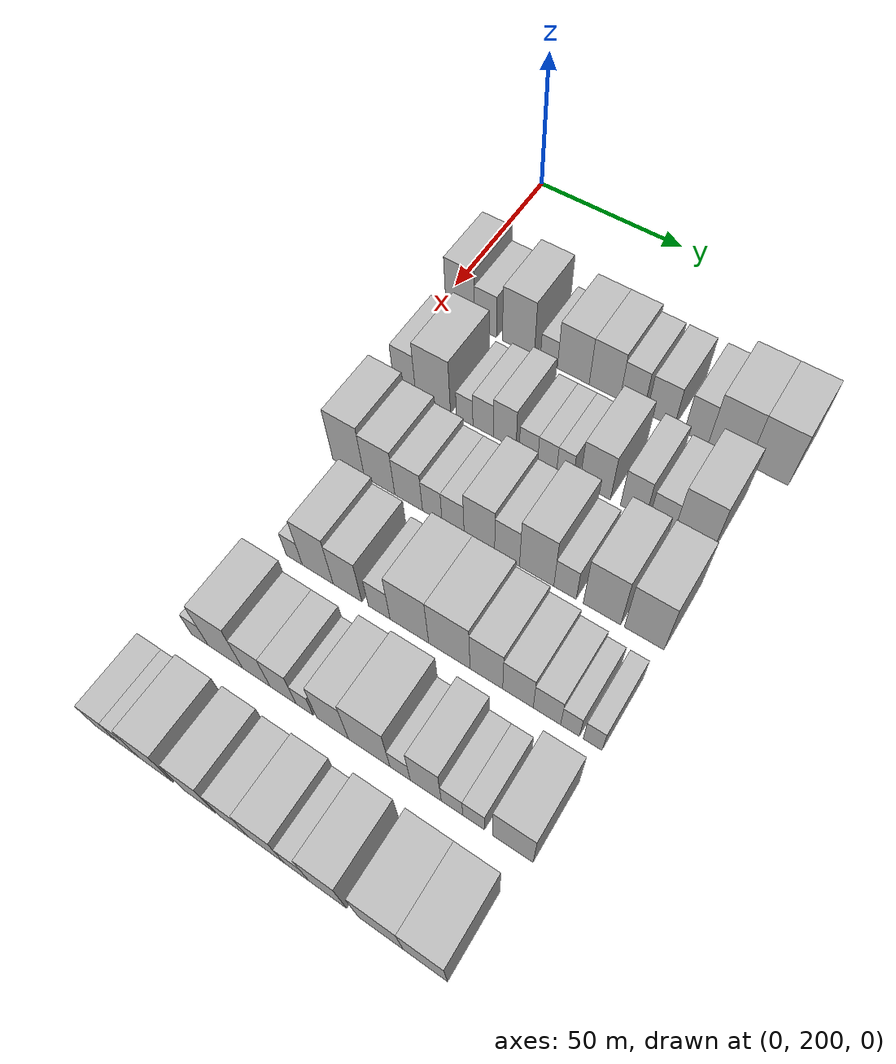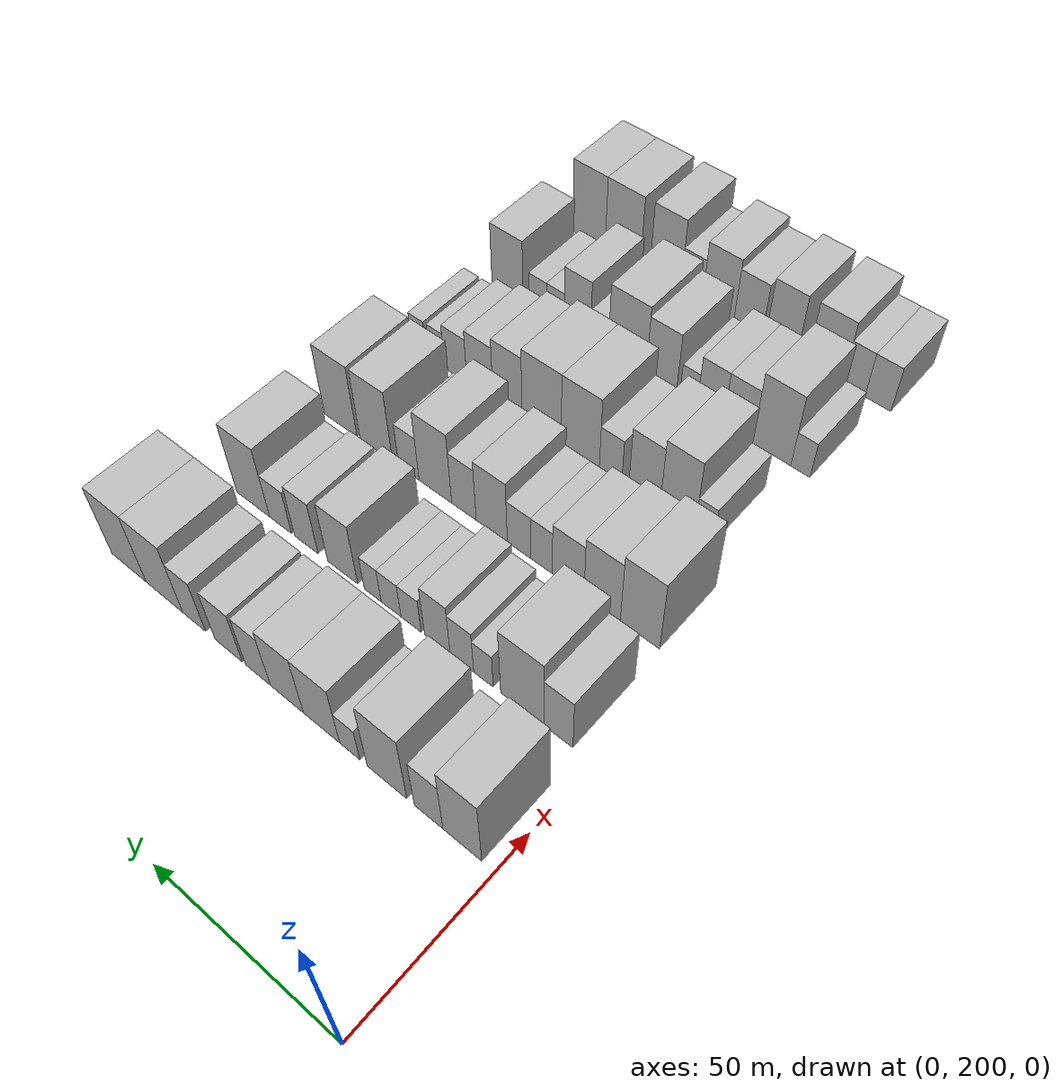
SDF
<sdf version="1.6">
 <world name="default">
  <model name="building_84">
   <static>1</static>
   <pose>50.0000 208.2229 0 0.000000 0.000000 0.000000</pose>
   <link name="link">
    <pose>0 0 12.00 0 0 0</pose>
    <collision name="collision"><geometry><box><size>20.0000 9.9118 24.0000</size></box></geometry></collision>
    <visual name="visual">
     <cast_shadows>0</cast_shadows>
     <geometry><box><size>20.0000 9.9118 24.0000</size></box></geometry>
     <material>
      <script>
       <uri>model://HANNAS_wall/materials/scripts</uri>
       <uri>model://HANNAS_wall/materials/textures</uri>
       <name>vrc/HANNAS_wall</name>
      </script>
     </material>
    </visual>
   </link>
  </model>
  <model name="building_85">
   <static>1</static>
   <pose>50.0000 216.9162 0 0.000000 0.000000 0.000000</pose>
   <link name="link">
    <pose>0 0 9.00 0 0 0</pose>
    <collision name="collision"><geometry><box><size>20.0000 7.4749 18.0000</size></box></geometry></collision>
    <visual name="visual">
     <cast_shadows>0</cast_shadows>
     <geometry><box><size>20.0000 7.4749 18.0000</size></box></geometry>
     <material>
      <script>
       <uri>model://HANNAS_wall/materials/scripts</uri>
       <uri>model://HANNAS_wall/materials/textures</uri>
       <name>vrc/HANNAS_wall</name>
      </script>
     </material>
    </visual>
   </link>
  </model>
  <model name="building_86">
   <static>1</static>
   <pose>50.0000 228.0209 0 0.000000 0.000000 0.000000</pose>
   <link name="link">
    <pose>0 0 12.00 0 0 0</pose>
    <collision name="collision"><geometry><box><size>20.0000 10.7344 24.0000</size></box></geometry></collision>
    <visual name="visual">
     <cast_shadows>0</cast_shadows>
     <geometry><box><size>20.0000 10.7344 24.0000</size></box></geometry>
     <material>
      <script>
       <uri>model://HANNAS_wall/materials/scripts</uri>
       <uri>model://HANNAS_wall/materials/textures</uri>
       <name>vrc/HANNAS_wall</name>
      </script>
     </material>
    </visual>
   </link>
  </model>
  <model name="building_87">
   <static>1</static>
   <pose>50.0000 238.1948 0 0.000000 0.000000 0.000000</pose>
   <link name="link">
    <pose>0 0 6.00 0 0 0</pose>
    <collision name="collision"><geometry><box><size>20.0000 5.6133 12.0000</size></box></geometry></collision>
    <visual name="visual">
     <cast_shadows>0</cast_shadows>
     <geometry><box><size>20.0000 5.6133 12.0000</size></box></geometry>
     <material>
      <script>
       <uri>model://HANNAS_wall/materials/scripts</uri>
       <uri>model://HANNAS_wall/materials/textures</uri>
       <name>vrc/HANNAS_wall</name>
      </script>
     </material>
    </visual>
   </link>
  </model>
  <model name="building_88">
   <static>1</static>
   <pose>50.0000 246.1663 0 0.000000 0.000000 0.000000</pose>
   <link name="link">
    <pose>0 0 10.50 0 0 0</pose>
    <collision name="collision"><geometry><box><size>20.0000 10.3297 21.0000</size></box></geometry></collision>
    <visual name="visual">
     <cast_shadows>0</cast_shadows>
     <geometry><box><size>20.0000 10.3297 21.0000</size></box></geometry>
     <material>
      <script>
       <uri>model://HANNAS_wall/materials/scripts</uri>
       <uri>model://HANNAS_wall/materials/textures</uri>
       <name>vrc/HANNAS_wall</name>
      </script>
     </material>
    </visual>
   </link>
  </model>
  <model name="building_89">
   <static>1</static>
   <pose>50.0000 256.2090 0 0.000000 0.000000 0.000000</pose>
   <link name="link">
    <pose>0 0 10.50 0 0 0</pose>
    <collision name="collision"><geometry><box><size>20.0000 9.7558 21.0000</size></box></geometry></collision>
    <visual name="visual">
     <cast_shadows>0</cast_shadows>
     <geometry><box><size>20.0000 9.7558 21.0000</size></box></geometry>
     <material>
      <script>
       <uri>model://HANNAS_wall/materials/scripts</uri>
       <uri>model://HANNAS_wall/materials/textures</uri>
       <name>vrc/HANNAS_wall</name>
      </script>
     </material>
    </visual>
   </link>
  </model>
  <model name="building_90">
   <static>1</static>
   <pose>50.0000 264.7991 0 0.000000 0.000000 0.000000</pose>
   <link name="link">
    <pose>0 0 9.00 0 0 0</pose>
    <collision name="collision"><geometry><box><size>20.0000 7.4243 18.0000</size></box></geometry></collision>
    <visual name="visual">
     <cast_shadows>0</cast_shadows>
     <geometry><box><size>20.0000 7.4243 18.0000</size></box></geometry>
     <material>
      <script>
       <uri>model://HANNAS_wall/materials/scripts</uri>
       <uri>model://HANNAS_wall/materials/textures</uri>
       <name>vrc/HANNAS_wall</name>
      </script>
     </material>
    </visual>
   </link>
  </model>
  <model name="building_91">
   <static>1</static>
   <pose>50.0000 273.7205 0 0.000000 0.000000 0.000000</pose>
   <link name="link">
    <pose>0 0 9.00 0 0 0</pose>
    <collision name="collision"><geometry><box><size>20.0000 8.4185 18.0000</size></box></geometry></collision>
    <visual name="visual">
     <cast_shadows>0</cast_shadows>
     <geometry><box><size>20.0000 8.4185 18.0000</size></box></geometry>
     <material>
      <script>
       <uri>model://HANNAS_wall/materials/scripts</uri>
       <uri>model://HANNAS_wall/materials/textures</uri>
       <name>vrc/HANNAS_wall</name>
      </script>
     </material>
    </visual>
   </link>
  </model>
  <model name="building_92">
   <static>1</static>
   <pose>50.0000 284.5388 0 0.000000 0.000000 0.000000</pose>
   <link name="link">
    <pose>0 0 9.00 0 0 0</pose>
    <collision name="collision"><geometry><box><size>20.0000 7.2180 18.0000</size></box></geometry></collision>
    <visual name="visual">
     <cast_shadows>0</cast_shadows>
     <geometry><box><size>20.0000 7.2180 18.0000</size></box></geometry>
     <material>
      <script>
       <uri>model://HANNAS_wall/materials/scripts</uri>
       <uri>model://HANNAS_wall/materials/textures</uri>
       <name>vrc/HANNAS_wall</name>
      </script>
     </material>
    </visual>
   </link>
  </model>
  <model name="building_93">
   <static>1</static>
   <pose>50.0000 294.1135 0 0.000000 0.000000 0.000000</pose>
   <link name="link">
    <pose>0 0 12.00 0 0 0</pose>
    <collision name="collision"><geometry><box><size>20.0000 11.9313 24.0000</size></box></geometry></collision>
    <visual name="visual">
     <cast_shadows>0</cast_shadows>
     <geometry><box><size>20.0000 11.9313 24.0000</size></box></geometry>
     <material>
      <script>
       <uri>model://HANNAS_wall/materials/scripts</uri>
       <uri>model://HANNAS_wall/materials/textures</uri>
       <name>vrc/HANNAS_wall</name>
      </script>
     </material>
    </visual>
   </link>
  </model>
  <model name="building_94">
   <static>1</static>
   <pose>50.0000 305.8453 0 0.000000 0.000000 0.000000</pose>
   <link name="link">
    <pose>0 0 12.00 0 0 0</pose>
    <collision name="collision"><geometry><box><size>20.0000 11.5323 24.0000</size></box></geometry></collision>
    <visual name="visual">
     <cast_shadows>0</cast_shadows>
     <geometry><box><size>20.0000 11.5323 24.0000</size></box></geometry>
     <material>
      <script>
       <uri>model://HANNAS_wall/materials/scripts</uri>
       <uri>model://HANNAS_wall/materials/textures</uri>
       <name>vrc/HANNAS_wall</name>
      </script>
     </material>
    </visual>
   </link>
  </model>
  <model name="building_193">
   <static>1</static>
   <pose>79.0000 208.6754 0 0.000000 0.000000 0.000000</pose>
   <link name="link">
    <pose>0 0 9.00 0 0 0</pose>
    <collision name="collision"><geometry><box><size>20.0000 7.4181 18.0000</size></box></geometry></collision>
    <visual name="visual">
     <cast_shadows>0</cast_shadows>
     <geometry><box><size>20.0000 7.4181 18.0000</size></box></geometry>
     <material>
      <script>
       <uri>model://HANNAS_wall/materials/scripts</uri>
       <uri>model://HANNAS_wall/materials/textures</uri>
       <name>vrc/HANNAS_wall</name>
      </script>
     </material>
    </visual>
   </link>
  </model>
  <model name="building_194">
   <static>1</static>
   <pose>79.0000 218.1799 0 0.000000 0.000000 0.000000</pose>
   <link name="link">
    <pose>0 0 12.00 0 0 0</pose>
    <collision name="collision"><geometry><box><size>20.0000 11.5909 24.0000</size></box></geometry></collision>
    <visual name="visual">
     <cast_shadows>0</cast_shadows>
     <geometry><box><size>20.0000 11.5909 24.0000</size></box></geometry>
     <material>
      <script>
       <uri>model://HANNAS_wall/materials/scripts</uri>
       <uri>model://HANNAS_wall/materials/textures</uri>
       <name>vrc/HANNAS_wall</name>
      </script>
     </material>
    </visual>
   </link>
  </model>
  <model name="building_195">
   <static>1</static>
   <pose>79.0000 228.6449 0 0.000000 0.000000 0.000000</pose>
   <link name="link">
    <pose>0 0 6.00 0 0 0</pose>
    <collision name="collision"><geometry><box><size>20.0000 5.3390 12.0000</size></box></geometry></collision>
    <visual name="visual">
     <cast_shadows>0</cast_shadows>
     <geometry><box><size>20.0000 5.3390 12.0000</size></box></geometry>
     <material>
      <script>
       <uri>model://HANNAS_wall/materials/scripts</uri>
       <uri>model://HANNAS_wall/materials/textures</uri>
       <name>vrc/HANNAS_wall</name>
      </script>
     </material>
    </visual>
   </link>
  </model>
  <model name="building_196">
   <static>1</static>
   <pose>79.0000 234.5920 0 0.000000 0.000000 0.000000</pose>
   <link name="link">
    <pose>0 0 7.50 0 0 0</pose>
    <collision name="collision"><geometry><box><size>20.0000 6.5551 15.0000</size></box></geometry></collision>
    <visual name="visual">
     <cast_shadows>0</cast_shadows>
     <geometry><box><size>20.0000 6.5551 15.0000</size></box></geometry>
     <material>
      <script>
       <uri>model://HANNAS_wall/materials/scripts</uri>
       <uri>model://HANNAS_wall/materials/textures</uri>
       <name>vrc/HANNAS_wall</name>
      </script>
     </material>
    </visual>
   </link>
  </model>
  <model name="building_197">
   <static>1</static>
   <pose>79.0000 241.4972 0 0.000000 0.000000 0.000000</pose>
   <link name="link">
    <pose>0 0 9.00 0 0 0</pose>
    <collision name="collision"><geometry><box><size>20.0000 7.2553 18.0000</size></box></geometry></collision>
    <visual name="visual">
     <cast_shadows>0</cast_shadows>
     <geometry><box><size>20.0000 7.2553 18.0000</size></box></geometry>
     <material>
      <script>
       <uri>model://HANNAS_wall/materials/scripts</uri>
       <uri>model://HANNAS_wall/materials/textures</uri>
       <name>vrc/HANNAS_wall</name>
      </script>
     </material>
    </visual>
   </link>
  </model>
  <model name="building_198">
   <static>1</static>
   <pose>79.0000 249.0395 0 0.000000 0.000000 0.000000</pose>
   <link name="link">
    <pose>0 0 6.00 0 0 0</pose>
    <collision name="collision"><geometry><box><size>20.0000 5.8294 12.0000</size></box></geometry></collision>
    <visual name="visual">
     <cast_shadows>0</cast_shadows>
     <geometry><box><size>20.0000 5.8294 12.0000</size></box></geometry>
     <material>
      <script>
       <uri>model://HANNAS_wall/materials/scripts</uri>
       <uri>model://HANNAS_wall/materials/textures</uri>
       <name>vrc/HANNAS_wall</name>
      </script>
     </material>
    </visual>
   </link>
  </model>
  <model name="building_199">
   <static>1</static>
   <pose>79.0000 254.8844 0 0.000000 0.000000 0.000000</pose>
   <link name="link">
    <pose>0 0 6.00 0 0 0</pose>
    <collision name="collision"><geometry><box><size>20.0000 5.8604 12.0000</size></box></geometry></collision>
    <visual name="visual">
     <cast_shadows>0</cast_shadows>
     <geometry><box><size>20.0000 5.8604 12.0000</size></box></geometry>
     <material>
      <script>
       <uri>model://HANNAS_wall/materials/scripts</uri>
       <uri>model://HANNAS_wall/materials/textures</uri>
       <name>vrc/HANNAS_wall</name>
      </script>
     </material>
    </visual>
   </link>
  </model>
  <model name="building_200">
   <static>1</static>
   <pose>79.0000 260.3402 0 0.000000 0.000000 0.000000</pose>
   <link name="link">
    <pose>0 0 6.00 0 0 0</pose>
    <collision name="collision"><geometry><box><size>20.0000 5.0512 12.0000</size></box></geometry></collision>
    <visual name="visual">
     <cast_shadows>0</cast_shadows>
     <geometry><box><size>20.0000 5.0512 12.0000</size></box></geometry>
     <material>
      <script>
       <uri>model://HANNAS_wall/materials/scripts</uri>
       <uri>model://HANNAS_wall/materials/textures</uri>
       <name>vrc/HANNAS_wall</name>
      </script>
     </material>
    </visual>
   </link>
  </model>
  <model name="building_201">
   <static>1</static>
   <pose>79.0000 269.4743 0 0.000000 0.000000 0.000000</pose>
   <link name="link">
    <pose>0 0 10.50 0 0 0</pose>
    <collision name="collision"><geometry><box><size>20.0000 9.2170 21.0000</size></box></geometry></collision>
    <visual name="visual">
     <cast_shadows>0</cast_shadows>
     <geometry><box><size>20.0000 9.2170 21.0000</size></box></geometry>
     <material>
      <script>
       <uri>model://HANNAS_wall/materials/scripts</uri>
       <uri>model://HANNAS_wall/materials/textures</uri>
       <name>vrc/HANNAS_wall</name>
      </script>
     </material>
    </visual>
   </link>
  </model>
  <model name="building_202">
   <static>1</static>
   <pose>79.0000 280.7610 0 0.000000 0.000000 0.000000</pose>
   <link name="link">
    <pose>0 0 9.00 0 0 0</pose>
    <collision name="collision"><geometry><box><size>20.0000 7.3566 18.0000</size></box></geometry></collision>
    <visual name="visual">
     <cast_shadows>0</cast_shadows>
     <geometry><box><size>20.0000 7.3566 18.0000</size></box></geometry>
     <material>
      <script>
       <uri>model://HANNAS_wall/materials/scripts</uri>
       <uri>model://HANNAS_wall/materials/textures</uri>
       <name>vrc/HANNAS_wall</name>
      </script>
     </material>
    </visual>
   </link>
  </model>
  <model name="building_203">
   <static>1</static>
   <pose>79.0000 288.9813 0 0.000000 0.000000 0.000000</pose>
   <link name="link">
    <pose>0 0 7.50 0 0 0</pose>
    <collision name="collision"><geometry><box><size>20.0000 7.0840 15.0000</size></box></geometry></collision>
    <visual name="visual">
     <cast_shadows>0</cast_shadows>
     <geometry><box><size>20.0000 7.0840 15.0000</size></box></geometry>
     <material>
      <script>
       <uri>model://HANNAS_wall/materials/scripts</uri>
       <uri>model://HANNAS_wall/materials/textures</uri>
       <name>vrc/HANNAS_wall</name>
      </script>
     </material>
    </visual>
   </link>
  </model>
  <model name="building_204">
   <static>1</static>
   <pose>79.0000 297.9540 0 0.000000 0.000000 0.000000</pose>
   <link name="link">
    <pose>0 0 12.00 0 0 0</pose>
    <collision name="collision"><geometry><box><size>20.0000 10.8613 24.0000</size></box></geometry></collision>
    <visual name="visual">
     <cast_shadows>0</cast_shadows>
     <geometry><box><size>20.0000 10.8613 24.0000</size></box></geometry>
     <material>
      <script>
       <uri>model://HANNAS_wall/materials/scripts</uri>
       <uri>model://HANNAS_wall/materials/textures</uri>
       <name>vrc/HANNAS_wall</name>
      </script>
     </material>
    </visual>
   </link>
  </model>
  <model name="building_310">
   <static>1</static>
   <pose>108.0000 210.6244 0 0.000000 0.000000 0.000000</pose>
   <link name="link">
    <pose>0 0 12.00 0 0 0</pose>
    <collision name="collision"><geometry><box><size>20.0000 10.4216 24.0000</size></box></geometry></collision>
    <visual name="visual">
     <cast_shadows>0</cast_shadows>
     <geometry><box><size>20.0000 10.4216 24.0000</size></box></geometry>
     <material>
      <script>
       <uri>model://HANNAS_wall/materials/scripts</uri>
       <uri>model://HANNAS_wall/materials/textures</uri>
       <name>vrc/HANNAS_wall</name>
      </script>
     </material>
    </visual>
   </link>
  </model>
  <model name="building_311">
   <static>1</static>
   <pose>108.0000 220.7612 0 0.000000 0.000000 0.000000</pose>
   <link name="link">
    <pose>0 0 10.50 0 0 0</pose>
    <collision name="collision"><geometry><box><size>20.0000 9.8519 21.0000</size></box></geometry></collision>
    <visual name="visual">
     <cast_shadows>0</cast_shadows>
     <geometry><box><size>20.0000 9.8519 21.0000</size></box></geometry>
     <material>
      <script>
       <uri>model://HANNAS_wall/materials/scripts</uri>
       <uri>model://HANNAS_wall/materials/textures</uri>
       <name>vrc/HANNAS_wall</name>
      </script>
     </material>
    </visual>
   </link>
  </model>
  <model name="building_312">
   <static>1</static>
   <pose>108.0000 230.0869 0 0.000000 0.000000 0.000000</pose>
   <link name="link">
    <pose>0 0 9.00 0 0 0</pose>
    <collision name="collision"><geometry><box><size>20.0000 8.7996 18.0000</size></box></geometry></collision>
    <visual name="visual">
     <cast_shadows>0</cast_shadows>
     <geometry><box><size>20.0000 8.7996 18.0000</size></box></geometry>
     <material>
      <script>
       <uri>model://HANNAS_wall/materials/scripts</uri>
       <uri>model://HANNAS_wall/materials/textures</uri>
       <name>vrc/HANNAS_wall</name>
      </script>
     </material>
    </visual>
   </link>
  </model>
  <model name="building_313">
   <static>1</static>
   <pose>108.0000 237.5331 0 0.000000 0.000000 0.000000</pose>
   <link name="link">
    <pose>0 0 7.50 0 0 0</pose>
    <collision name="collision"><geometry><box><size>20.0000 6.0927 15.0000</size></box></geometry></collision>
    <visual name="visual">
     <cast_shadows>0</cast_shadows>
     <geometry><box><size>20.0000 6.0927 15.0000</size></box></geometry>
     <material>
      <script>
       <uri>model://HANNAS_wall/materials/scripts</uri>
       <uri>model://HANNAS_wall/materials/textures</uri>
       <name>vrc/HANNAS_wall</name>
      </script>
     </material>
    </visual>
   </link>
  </model>
  <model name="building_314">
   <static>1</static>
   <pose>108.0000 243.9855 0 0.000000 0.000000 0.000000</pose>
   <link name="link">
    <pose>0 0 7.50 0 0 0</pose>
    <collision name="collision"><geometry><box><size>20.0000 6.8123 15.0000</size></box></geometry></collision>
    <visual name="visual">
     <cast_shadows>0</cast_shadows>
     <geometry><box><size>20.0000 6.8123 15.0000</size></box></geometry>
     <material>
      <script>
       <uri>model://HANNAS_wall/materials/scripts</uri>
       <uri>model://HANNAS_wall/materials/textures</uri>
       <name>vrc/HANNAS_wall</name>
      </script>
     </material>
    </visual>
   </link>
  </model>
  <model name="building_315">
   <static>1</static>
   <pose>108.0000 251.9973 0 0.000000 0.000000 0.000000</pose>
   <link name="link">
    <pose>0 0 10.50 0 0 0</pose>
    <collision name="collision"><geometry><box><size>20.0000 9.2112 21.0000</size></box></geometry></collision>
    <visual name="visual">
     <cast_shadows>0</cast_shadows>
     <geometry><box><size>20.0000 9.2112 21.0000</size></box></geometry>
     <material>
      <script>
       <uri>model://HANNAS_wall/materials/scripts</uri>
       <uri>model://HANNAS_wall/materials/textures</uri>
       <name>vrc/HANNAS_wall</name>
      </script>
     </material>
    </visual>
   </link>
  </model>
  <model name="building_316">
   <static>1</static>
   <pose>108.0000 260.2985 0 0.000000 0.000000 0.000000</pose>
   <link name="link">
    <pose>0 0 9.00 0 0 0</pose>
    <collision name="collision"><geometry><box><size>20.0000 7.3914 18.0000</size></box></geometry></collision>
    <visual name="visual">
     <cast_shadows>0</cast_shadows>
     <geometry><box><size>20.0000 7.3914 18.0000</size></box></geometry>
     <material>
      <script>
       <uri>model://HANNAS_wall/materials/scripts</uri>
       <uri>model://HANNAS_wall/materials/textures</uri>
       <name>vrc/HANNAS_wall</name>
      </script>
     </material>
    </visual>
   </link>
  </model>
  <model name="building_317">
   <static>1</static>
   <pose>108.0000 269.0112 0 0.000000 0.000000 0.000000</pose>
   <link name="link">
    <pose>0 0 12.00 0 0 0</pose>
    <collision name="collision"><geometry><box><size>20.0000 10.0340 24.0000</size></box></geometry></collision>
    <visual name="visual">
     <cast_shadows>0</cast_shadows>
     <geometry><box><size>20.0000 10.0340 24.0000</size></box></geometry>
     <material>
      <script>
       <uri>model://HANNAS_wall/materials/scripts</uri>
       <uri>model://HANNAS_wall/materials/textures</uri>
       <name>vrc/HANNAS_wall</name>
      </script>
     </material>
    </visual>
   </link>
  </model>
  <model name="building_318">
   <static>1</static>
   <pose>108.0000 277.2382 0 0.000000 0.000000 0.000000</pose>
   <link name="link">
    <pose>0 0 7.50 0 0 0</pose>
    <collision name="collision"><geometry><box><size>20.0000 6.4200 15.0000</size></box></geometry></collision>
    <visual name="visual">
     <cast_shadows>0</cast_shadows>
     <geometry><box><size>20.0000 6.4200 15.0000</size></box></geometry>
     <material>
      <script>
       <uri>model://HANNAS_wall/materials/scripts</uri>
       <uri>model://HANNAS_wall/materials/textures</uri>
       <name>vrc/HANNAS_wall</name>
      </script>
     </material>
    </visual>
   </link>
  </model>
  <model name="building_319">
   <static>1</static>
   <pose>108.0000 287.7044 0 0.000000 0.000000 0.000000</pose>
   <link name="link">
    <pose>0 0 12.00 0 0 0</pose>
    <collision name="collision"><geometry><box><size>20.0000 10.5124 24.0000</size></box></geometry></collision>
    <visual name="visual">
     <cast_shadows>0</cast_shadows>
     <geometry><box><size>20.0000 10.5124 24.0000</size></box></geometry>
     <material>
      <script>
       <uri>model://HANNAS_wall/materials/scripts</uri>
       <uri>model://HANNAS_wall/materials/textures</uri>
       <name>vrc/HANNAS_wall</name>
      </script>
     </material>
    </visual>
   </link>
  </model>
  <model name="building_320">
   <static>1</static>
   <pose>108.0000 299.3896 0 0.000000 0.000000 0.000000</pose>
   <link name="link">
    <pose>0 0 12.00 0 0 0</pose>
    <collision name="collision"><geometry><box><size>20.0000 10.8579 24.0000</size></box></geometry></collision>
    <visual name="visual">
     <cast_shadows>0</cast_shadows>
     <geometry><box><size>20.0000 10.8579 24.0000</size></box></geometry>
     <material>
      <script>
       <uri>model://HANNAS_wall/materials/scripts</uri>
       <uri>model://HANNAS_wall/materials/textures</uri>
       <name>vrc/HANNAS_wall</name>
      </script>
     </material>
    </visual>
   </link>
  </model>
  <model name="building_417">
   <static>1</static>
   <pose>137.0000 215.0780 0 0.000000 0.000000 0.000000</pose>
   <link name="link">
    <pose>0 0 6.00 0 0 0</pose>
    <collision name="collision"><geometry><box><size>20.0000 5.1411 12.0000</size></box></geometry></collision>
    <visual name="visual">
     <cast_shadows>0</cast_shadows>
     <geometry><box><size>20.0000 5.1411 12.0000</size></box></geometry>
     <material>
      <script>
       <uri>model://HANNAS_wall/materials/scripts</uri>
       <uri>model://HANNAS_wall/materials/textures</uri>
       <name>vrc/HANNAS_wall</name>
      </script>
     </material>
    </visual>
   </link>
  </model>
  <model name="building_418">
   <static>1</static>
   <pose>137.0000 222.4908 0 0.000000 0.000000 0.000000</pose>
   <link name="link">
    <pose>0 0 12.00 0 0 0</pose>
    <collision name="collision"><geometry><box><size>20.0000 9.6844 24.0000</size></box></geometry></collision>
    <visual name="visual">
     <cast_shadows>0</cast_shadows>
     <geometry><box><size>20.0000 9.6844 24.0000</size></box></geometry>
     <material>
      <script>
       <uri>model://HANNAS_wall/materials/scripts</uri>
       <uri>model://HANNAS_wall/materials/textures</uri>
       <name>vrc/HANNAS_wall</name>
      </script>
     </material>
    </visual>
   </link>
  </model>
  <model name="building_419">
   <static>1</static>
   <pose>137.0000 231.7524 0 0.000000 0.000000 0.000000</pose>
   <link name="link">
    <pose>0 0 10.50 0 0 0</pose>
    <collision name="collision"><geometry><box><size>20.0000 8.8389 21.0000</size></box></geometry></collision>
    <visual name="visual">
     <cast_shadows>0</cast_shadows>
     <geometry><box><size>20.0000 8.8389 21.0000</size></box></geometry>
     <material>
      <script>
       <uri>model://HANNAS_wall/materials/scripts</uri>
       <uri>model://HANNAS_wall/materials/textures</uri>
       <name>vrc/HANNAS_wall</name>
      </script>
     </material>
    </visual>
   </link>
  </model>
  <model name="building_420">
   <static>1</static>
   <pose>137.0000 241.4376 0 0.000000 0.000000 0.000000</pose>
   <link name="link">
    <pose>0 0 7.50 0 0 0</pose>
    <collision name="collision"><geometry><box><size>20.0000 6.5314 15.0000</size></box></geometry></collision>
    <visual name="visual">
     <cast_shadows>0</cast_shadows>
     <geometry><box><size>20.0000 6.5314 15.0000</size></box></geometry>
     <material>
      <script>
       <uri>model://HANNAS_wall/materials/scripts</uri>
       <uri>model://HANNAS_wall/materials/textures</uri>
       <name>vrc/HANNAS_wall</name>
      </script>
     </material>
    </visual>
   </link>
  </model>
  <model name="building_421">
   <static>1</static>
   <pose>137.0000 250.4019 0 0.000000 0.000000 0.000000</pose>
   <link name="link">
    <pose>0 0 12.00 0 0 0</pose>
    <collision name="collision"><geometry><box><size>20.0000 11.3972 24.0000</size></box></geometry></collision>
    <visual name="visual">
     <cast_shadows>0</cast_shadows>
     <geometry><box><size>20.0000 11.3972 24.0000</size></box></geometry>
     <material>
      <script>
       <uri>model://HANNAS_wall/materials/scripts</uri>
       <uri>model://HANNAS_wall/materials/textures</uri>
       <name>vrc/HANNAS_wall</name>
      </script>
     </material>
    </visual>
   </link>
  </model>
  <model name="building_422">
   <static>1</static>
   <pose>137.0000 262.0437 0 0.000000 0.000000 0.000000</pose>
   <link name="link">
    <pose>0 0 12.00 0 0 0</pose>
    <collision name="collision"><geometry><box><size>20.0000 11.8865 24.0000</size></box></geometry></collision>
    <visual name="visual">
     <cast_shadows>0</cast_shadows>
     <geometry><box><size>20.0000 11.8865 24.0000</size></box></geometry>
     <material>
      <script>
       <uri>model://HANNAS_wall/materials/scripts</uri>
       <uri>model://HANNAS_wall/materials/textures</uri>
       <name>vrc/HANNAS_wall</name>
      </script>
     </material>
    </visual>
   </link>
  </model>
  <model name="building_423">
   <static>1</static>
   <pose>137.0000 272.5657 0 0.000000 0.000000 0.000000</pose>
   <link name="link">
    <pose>0 0 10.50 0 0 0</pose>
    <collision name="collision"><geometry><box><size>20.0000 9.1575 21.0000</size></box></geometry></collision>
    <visual name="visual">
     <cast_shadows>0</cast_shadows>
     <geometry><box><size>20.0000 9.1575 21.0000</size></box></geometry>
     <material>
      <script>
       <uri>model://HANNAS_wall/materials/scripts</uri>
       <uri>model://HANNAS_wall/materials/textures</uri>
       <name>vrc/HANNAS_wall</name>
      </script>
     </material>
    </visual>
   </link>
  </model>
  <model name="building_424">
   <static>1</static>
   <pose>137.0000 281.3518 0 0.000000 0.000000 0.000000</pose>
   <link name="link">
    <pose>0 0 9.00 0 0 0</pose>
    <collision name="collision"><geometry><box><size>20.0000 8.4146 18.0000</size></box></geometry></collision>
    <visual name="visual">
     <cast_shadows>0</cast_shadows>
     <geometry><box><size>20.0000 8.4146 18.0000</size></box></geometry>
     <material>
      <script>
       <uri>model://HANNAS_wall/materials/scripts</uri>
       <uri>model://HANNAS_wall/materials/textures</uri>
       <name>vrc/HANNAS_wall</name>
      </script>
     </material>
    </visual>
   </link>
  </model>
  <model name="building_425">
   <static>1</static>
   <pose>137.0000 289.2545 0 0.000000 0.000000 0.000000</pose>
   <link name="link">
    <pose>0 0 7.50 0 0 0</pose>
    <collision name="collision"><geometry><box><size>20.0000 7.3908 15.0000</size></box></geometry></collision>
    <visual name="visual">
     <cast_shadows>0</cast_shadows>
     <geometry><box><size>20.0000 7.3908 15.0000</size></box></geometry>
     <material>
      <script>
       <uri>model://HANNAS_wall/materials/scripts</uri>
       <uri>model://HANNAS_wall/materials/textures</uri>
       <name>vrc/HANNAS_wall</name>
      </script>
     </material>
    </visual>
   </link>
  </model>
  <model name="building_426">
   <static>1</static>
   <pose>137.0000 295.4547 0 0.000000 0.000000 0.000000</pose>
   <link name="link">
    <pose>0 0 6.00 0 0 0</pose>
    <collision name="collision"><geometry><box><size>20.0000 5.0097 12.0000</size></box></geometry></collision>
    <visual name="visual">
     <cast_shadows>0</cast_shadows>
     <geometry><box><size>20.0000 5.0097 12.0000</size></box></geometry>
     <material>
      <script>
       <uri>model://HANNAS_wall/materials/scripts</uri>
       <uri>model://HANNAS_wall/materials/textures</uri>
       <name>vrc/HANNAS_wall</name>
      </script>
     </material>
    </visual>
   </link>
  </model>
  <model name="building_427">
   <static>1</static>
   <pose>137.0000 301.4380 0 0.000000 0.000000 0.000000</pose>
   <link name="link">
    <pose>0 0 6.00 0 0 0</pose>
    <collision name="collision"><geometry><box><size>20.0000 4.9570 12.0000</size></box></geometry></collision>
    <visual name="visual">
     <cast_shadows>0</cast_shadows>
     <geometry><box><size>20.0000 4.9570 12.0000</size></box></geometry>
     <material>
      <script>
       <uri>model://HANNAS_wall/materials/scripts</uri>
       <uri>model://HANNAS_wall/materials/textures</uri>
       <name>vrc/HANNAS_wall</name>
      </script>
     </material>
    </visual>
   </link>
  </model>
  <model name="building_532">
   <static>1</static>
   <pose>166.0000 208.8924 0 0.000000 0.000000 0.000000</pose>
   <link name="link">
    <pose>0 0 6.00 0 0 0</pose>
    <collision name="collision"><geometry><box><size>20.0000 5.2931 12.0000</size></box></geometry></collision>
    <visual name="visual">
     <cast_shadows>0</cast_shadows>
     <geometry><box><size>20.0000 5.2931 12.0000</size></box></geometry>
     <material>
      <script>
       <uri>model://HANNAS_wall/materials/scripts</uri>
       <uri>model://HANNAS_wall/materials/textures</uri>
       <name>vrc/HANNAS_wall</name>
      </script>
     </material>
    </visual>
   </link>
  </model>
  <model name="building_533">
   <static>1</static>
   <pose>166.0000 216.8849 0 0.000000 0.000000 0.000000</pose>
   <link name="link">
    <pose>0 0 12.00 0 0 0</pose>
    <collision name="collision"><geometry><box><size>20.0000 10.6918 24.0000</size></box></geometry></collision>
    <visual name="visual">
     <cast_shadows>0</cast_shadows>
     <geometry><box><size>20.0000 10.6918 24.0000</size></box></geometry>
     <material>
      <script>
       <uri>model://HANNAS_wall/materials/scripts</uri>
       <uri>model://HANNAS_wall/materials/textures</uri>
       <name>vrc/HANNAS_wall</name>
      </script>
     </material>
    </visual>
   </link>
  </model>
  <model name="building_534">
   <static>1</static>
   <pose>166.0000 226.4181 0 0.000000 0.000000 0.000000</pose>
   <link name="link">
    <pose>0 0 9.00 0 0 0</pose>
    <collision name="collision"><geometry><box><size>20.0000 8.3746 18.0000</size></box></geometry></collision>
    <visual name="visual">
     <cast_shadows>0</cast_shadows>
     <geometry><box><size>20.0000 8.3746 18.0000</size></box></geometry>
     <material>
      <script>
       <uri>model://HANNAS_wall/materials/scripts</uri>
       <uri>model://HANNAS_wall/materials/textures</uri>
       <name>vrc/HANNAS_wall</name>
      </script>
     </material>
    </visual>
   </link>
  </model>
  <model name="building_535">
   <static>1</static>
   <pose>166.0000 234.4471 0 0.000000 0.000000 0.000000</pose>
   <link name="link">
    <pose>0 0 9.00 0 0 0</pose>
    <collision name="collision"><geometry><box><size>20.0000 7.6834 18.0000</size></box></geometry></collision>
    <visual name="visual">
     <cast_shadows>0</cast_shadows>
     <geometry><box><size>20.0000 7.6834 18.0000</size></box></geometry>
     <material>
      <script>
       <uri>model://HANNAS_wall/materials/scripts</uri>
       <uri>model://HANNAS_wall/materials/textures</uri>
       <name>vrc/HANNAS_wall</name>
      </script>
     </material>
    </visual>
   </link>
  </model>
  <model name="building_536">
   <static>1</static>
   <pose>166.0000 240.8388 0 0.000000 0.000000 0.000000</pose>
   <link name="link">
    <pose>0 0 6.00 0 0 0</pose>
    <collision name="collision"><geometry><box><size>20.0000 5.1000 12.0000</size></box></geometry></collision>
    <visual name="visual">
     <cast_shadows>0</cast_shadows>
     <geometry><box><size>20.0000 5.1000 12.0000</size></box></geometry>
     <material>
      <script>
       <uri>model://HANNAS_wall/materials/scripts</uri>
       <uri>model://HANNAS_wall/materials/textures</uri>
       <name>vrc/HANNAS_wall</name>
      </script>
     </material>
    </visual>
   </link>
  </model>
  <model name="building_537">
   <static>1</static>
   <pose>166.0000 248.9480 0 0.000000 0.000000 0.000000</pose>
   <link name="link">
    <pose>0 0 10.50 0 0 0</pose>
    <collision name="collision"><geometry><box><size>20.0000 9.1184 21.0000</size></box></geometry></collision>
    <visual name="visual">
     <cast_shadows>0</cast_shadows>
     <geometry><box><size>20.0000 9.1184 21.0000</size></box></geometry>
     <material>
      <script>
       <uri>model://HANNAS_wall/materials/scripts</uri>
       <uri>model://HANNAS_wall/materials/textures</uri>
       <name>vrc/HANNAS_wall</name>
      </script>
     </material>
    </visual>
   </link>
  </model>
  <model name="building_538">
   <static>1</static>
   <pose>166.0000 259.3509 0 0.000000 0.000000 0.000000</pose>
   <link name="link">
    <pose>0 0 12.00 0 0 0</pose>
    <collision name="collision"><geometry><box><size>20.0000 11.6875 24.0000</size></box></geometry></collision>
    <visual name="visual">
     <cast_shadows>0</cast_shadows>
     <geometry><box><size>20.0000 11.6875 24.0000</size></box></geometry>
     <material>
      <script>
       <uri>model://HANNAS_wall/materials/scripts</uri>
       <uri>model://HANNAS_wall/materials/textures</uri>
       <name>vrc/HANNAS_wall</name>
      </script>
     </material>
    </visual>
   </link>
  </model>
  <model name="building_539">
   <static>1</static>
   <pose>166.0000 267.9820 0 0.000000 0.000000 0.000000</pose>
   <link name="link">
    <pose>0 0 6.00 0 0 0</pose>
    <collision name="collision"><geometry><box><size>20.0000 5.5747 12.0000</size></box></geometry></collision>
    <visual name="visual">
     <cast_shadows>0</cast_shadows>
     <geometry><box><size>20.0000 5.5747 12.0000</size></box></geometry>
     <material>
      <script>
       <uri>model://HANNAS_wall/materials/scripts</uri>
       <uri>model://HANNAS_wall/materials/textures</uri>
       <name>vrc/HANNAS_wall</name>
      </script>
     </material>
    </visual>
   </link>
  </model>
  <model name="building_540">
   <static>1</static>
   <pose>166.0000 274.9764 0 0.000000 0.000000 0.000000</pose>
   <link name="link">
    <pose>0 0 10.50 0 0 0</pose>
    <collision name="collision"><geometry><box><size>20.0000 8.4141 21.0000</size></box></geometry></collision>
    <visual name="visual">
     <cast_shadows>0</cast_shadows>
     <geometry><box><size>20.0000 8.4141 21.0000</size></box></geometry>
     <material>
      <script>
       <uri>model://HANNAS_wall/materials/scripts</uri>
       <uri>model://HANNAS_wall/materials/textures</uri>
       <name>vrc/HANNAS_wall</name>
      </script>
     </material>
    </visual>
   </link>
  </model>
  <model name="building_541">
   <static>1</static>
   <pose>166.0000 282.0380 0 0.000000 0.000000 0.000000</pose>
   <link name="link">
    <pose>0 0 6.00 0 0 0</pose>
    <collision name="collision"><geometry><box><size>20.0000 5.7090 12.0000</size></box></geometry></collision>
    <visual name="visual">
     <cast_shadows>0</cast_shadows>
     <geometry><box><size>20.0000 5.7090 12.0000</size></box></geometry>
     <material>
      <script>
       <uri>model://HANNAS_wall/materials/scripts</uri>
       <uri>model://HANNAS_wall/materials/textures</uri>
       <name>vrc/HANNAS_wall</name>
      </script>
     </material>
    </visual>
   </link>
  </model>
  <model name="building_542">
   <static>1</static>
   <pose>166.0000 287.7403 0 0.000000 0.000000 0.000000</pose>
   <link name="link">
    <pose>0 0 6.00 0 0 0</pose>
    <collision name="collision"><geometry><box><size>20.0000 5.6956 12.0000</size></box></geometry></collision>
    <visual name="visual">
     <cast_shadows>0</cast_shadows>
     <geometry><box><size>20.0000 5.6956 12.0000</size></box></geometry>
     <material>
      <script>
       <uri>model://HANNAS_wall/materials/scripts</uri>
       <uri>model://HANNAS_wall/materials/textures</uri>
       <name>vrc/HANNAS_wall</name>
      </script>
     </material>
    </visual>
   </link>
  </model>
  <model name="building_543">
   <static>1</static>
   <pose>166.0000 297.8125 0 0.000000 0.000000 0.000000</pose>
   <link name="link">
    <pose>0 0 10.50 0 0 0</pose>
    <collision name="collision"><geometry><box><size>20.0000 10.4488 21.0000</size></box></geometry></collision>
    <visual name="visual">
     <cast_shadows>0</cast_shadows>
     <geometry><box><size>20.0000 10.4488 21.0000</size></box></geometry>
     <material>
      <script>
       <uri>model://HANNAS_wall/materials/scripts</uri>
       <uri>model://HANNAS_wall/materials/textures</uri>
       <name>vrc/HANNAS_wall</name>
      </script>
     </material>
    </visual>
   </link>
  </model>
  <model name="building_643">
   <static>1</static>
   <pose>195.0000 206.0964 0 0.000000 0.000000 0.000000</pose>
   <link name="link">
    <pose>0 0 7.50 0 0 0</pose>
    <collision name="collision"><geometry><box><size>20.0000 7.2213 15.0000</size></box></geometry></collision>
    <visual name="visual">
     <cast_shadows>0</cast_shadows>
     <geometry><box><size>20.0000 7.2213 15.0000</size></box></geometry>
     <material>
      <script>
       <uri>model://HANNAS_wall/materials/scripts</uri>
       <uri>model://HANNAS_wall/materials/textures</uri>
       <name>vrc/HANNAS_wall</name>
      </script>
     </material>
    </visual>
   </link>
  </model>
  <model name="building_644">
   <static>1</static>
   <pose>195.0000 212.8248 0 0.000000 0.000000 0.000000</pose>
   <link name="link">
    <pose>0 0 7.50 0 0 0</pose>
    <collision name="collision"><geometry><box><size>20.0000 6.2354 15.0000</size></box></geometry></collision>
    <visual name="visual">
     <cast_shadows>0</cast_shadows>
     <geometry><box><size>20.0000 6.2354 15.0000</size></box></geometry>
     <material>
      <script>
       <uri>model://HANNAS_wall/materials/scripts</uri>
       <uri>model://HANNAS_wall/materials/textures</uri>
       <name>vrc/HANNAS_wall</name>
      </script>
     </material>
    </visual>
   </link>
  </model>
  <model name="building_645">
   <static>1</static>
   <pose>195.0000 221.0544 0 0.000000 0.000000 0.000000</pose>
   <link name="link">
    <pose>0 0 10.50 0 0 0</pose>
    <collision name="collision"><geometry><box><size>20.0000 10.2237 21.0000</size></box></geometry></collision>
    <visual name="visual">
     <cast_shadows>0</cast_shadows>
     <geometry><box><size>20.0000 10.2237 21.0000</size></box></geometry>
     <material>
      <script>
       <uri>model://HANNAS_wall/materials/scripts</uri>
       <uri>model://HANNAS_wall/materials/textures</uri>
       <name>vrc/HANNAS_wall</name>
      </script>
     </material>
    </visual>
   </link>
  </model>
  <model name="building_646">
   <static>1</static>
   <pose>195.0000 233.8490 0 0.000000 0.000000 0.000000</pose>
   <link name="link">
    <pose>0 0 10.50 0 0 0</pose>
    <collision name="collision"><geometry><box><size>20.0000 9.3653 21.0000</size></box></geometry></collision>
    <visual name="visual">
     <cast_shadows>0</cast_shadows>
     <geometry><box><size>20.0000 9.3653 21.0000</size></box></geometry>
     <material>
      <script>
       <uri>model://HANNAS_wall/materials/scripts</uri>
       <uri>model://HANNAS_wall/materials/textures</uri>
       <name>vrc/HANNAS_wall</name>
      </script>
     </material>
    </visual>
   </link>
  </model>
  <model name="building_647">
   <static>1</static>
   <pose>195.0000 243.7857 0 0.000000 0.000000 0.000000</pose>
   <link name="link">
    <pose>0 0 9.00 0 0 0</pose>
    <collision name="collision"><geometry><box><size>20.0000 8.5081 18.0000</size></box></geometry></collision>
    <visual name="visual">
     <cast_shadows>0</cast_shadows>
     <geometry><box><size>20.0000 8.5081 18.0000</size></box></geometry>
     <material>
      <script>
       <uri>model://HANNAS_wall/materials/scripts</uri>
       <uri>model://HANNAS_wall/materials/textures</uri>
       <name>vrc/HANNAS_wall</name>
      </script>
     </material>
    </visual>
   </link>
  </model>
  <model name="building_648">
   <static>1</static>
   <pose>195.0000 252.9424 0 0.000000 0.000000 0.000000</pose>
   <link name="link">
    <pose>0 0 10.50 0 0 0</pose>
    <collision name="collision"><geometry><box><size>20.0000 9.8053 21.0000</size></box></geometry></collision>
    <visual name="visual">
     <cast_shadows>0</cast_shadows>
     <geometry><box><size>20.0000 9.8053 21.0000</size></box></geometry>
     <material>
      <script>
       <uri>model://HANNAS_wall/materials/scripts</uri>
       <uri>model://HANNAS_wall/materials/textures</uri>
       <name>vrc/HANNAS_wall</name>
      </script>
     </material>
    </visual>
   </link>
  </model>
  <model name="building_649">
   <static>1</static>
   <pose>195.0000 261.2264 0 0.000000 0.000000 0.000000</pose>
   <link name="link">
    <pose>0 0 7.50 0 0 0</pose>
    <collision name="collision"><geometry><box><size>20.0000 6.7627 15.0000</size></box></geometry></collision>
    <visual name="visual">
     <cast_shadows>0</cast_shadows>
     <geometry><box><size>20.0000 6.7627 15.0000</size></box></geometry>
     <material>
      <script>
       <uri>model://HANNAS_wall/materials/scripts</uri>
       <uri>model://HANNAS_wall/materials/textures</uri>
       <name>vrc/HANNAS_wall</name>
      </script>
     </material>
    </visual>
   </link>
  </model>
  <model name="building_650">
   <static>1</static>
   <pose>195.0000 269.5606 0 0.000000 0.000000 0.000000</pose>
   <link name="link">
    <pose>0 0 12.00 0 0 0</pose>
    <collision name="collision"><geometry><box><size>20.0000 9.9056 24.0000</size></box></geometry></collision>
    <visual name="visual">
     <cast_shadows>0</cast_shadows>
     <geometry><box><size>20.0000 9.9056 24.0000</size></box></geometry>
     <material>
      <script>
       <uri>model://HANNAS_wall/materials/scripts</uri>
       <uri>model://HANNAS_wall/materials/textures</uri>
       <name>vrc/HANNAS_wall</name>
      </script>
     </material>
    </visual>
   </link>
  </model>
  <model name="building_651">
   <static>1</static>
   <pose>195.0000 283.3424 0 0.000000 0.000000 0.000000</pose>
   <link name="link">
    <pose>0 0 12.00 0 0 0</pose>
    <collision name="collision"><geometry><box><size>20.0000 11.6580 24.0000</size></box></geometry></collision>
    <visual name="visual">
     <cast_shadows>0</cast_shadows>
     <geometry><box><size>20.0000 11.6580 24.0000</size></box></geometry>
     <material>
      <script>
       <uri>model://HANNAS_wall/materials/scripts</uri>
       <uri>model://HANNAS_wall/materials/textures</uri>
       <name>vrc/HANNAS_wall</name>
      </script>
     </material>
    </visual>
   </link>
  </model>
  <model name="building_652">
   <static>1</static>
   <pose>195.0000 294.6537 0 0.000000 0.000000 0.000000</pose>
   <link name="link">
    <pose>0 0 12.00 0 0 0</pose>
    <collision name="collision"><geometry><box><size>20.0000 10.9646 24.0000</size></box></geometry></collision>
    <visual name="visual">
     <cast_shadows>0</cast_shadows>
     <geometry><box><size>20.0000 10.9646 24.0000</size></box></geometry>
     <material>
      <script>
       <uri>model://HANNAS_wall/materials/scripts</uri>
       <uri>model://HANNAS_wall/materials/textures</uri>
       <name>vrc/HANNAS_wall</name>
      </script>
     </material>
    </visual>
   </link>
  </model>
 </world>
</sdf>
